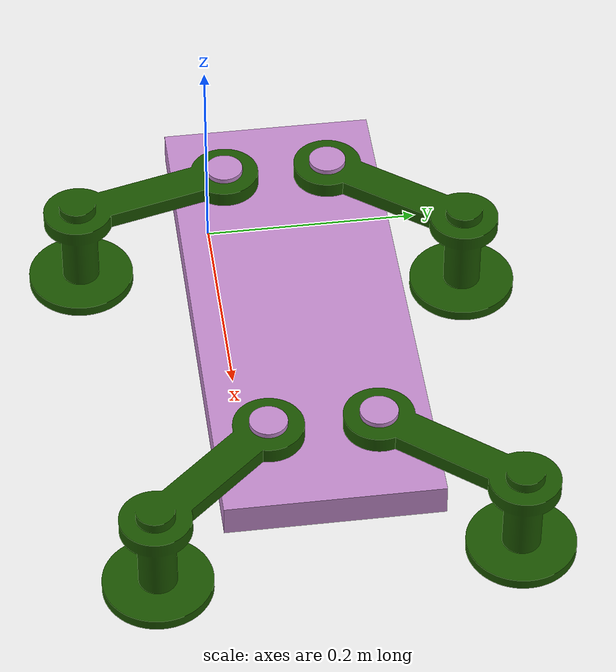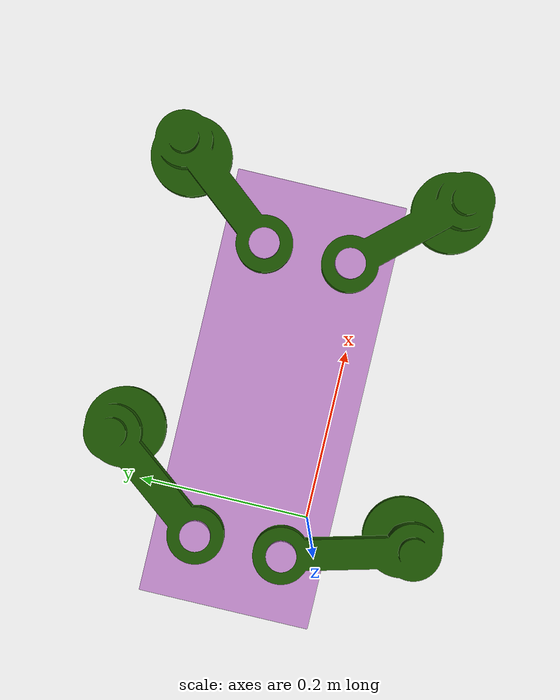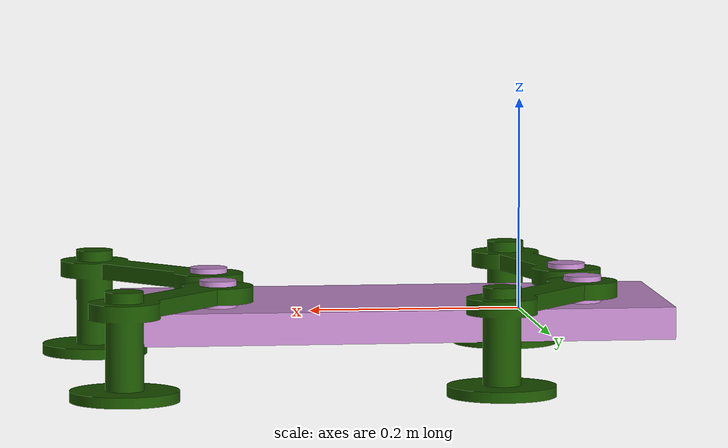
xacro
<?xml version="1.0" ?>
<!-- Generated using onshape-to-robot -->
<!-- Onshape https://cad.onshape.com/documents/cb0e539256f574f2d490db78/w/91c431183e6e22a7b620fa0c/e/314ada7fe03ae790e1f4065a -->
<robot name="gecko_robot" xmlns:xacro="http://www.ros.org/wiki/xacro">

<xacro:include filename="/home/cristianooo/jazzy_ros2_robostack/src/gecko_robot/model/diff_drive_robot.gazebo" />

  <link name="dummy_root">
    <inertial>
        <origin xyz="0.127962 0.0712341 0.00623375" rpy="0 0 0"/>
        <mass value="3.87026"/>
        <inertia ixx="0.0131855" ixy="0" ixz="0" iyy="0.0819855" iyz="0" izz="0.0944197"/>
    </inertial>
  </link>

  <joint name="dummy_joint" type="fixed">
      <parent link="dummy_root"/>
      <child link="base_link"/>
      <origin xyz="0 0 0" rpy="0 0 0"/>
  </joint>

  <!-- Link base_link -->
  <link name="base_link">
    <inertial>
      <origin xyz="0.127962 0.0712341 0.00623375" rpy="0 0 0"/>
      <mass value="3.87026"/>
      <inertia ixx="0.0131855" ixy="0" ixz="0" iyy="0.0819855" iyz="0" izz="0.0944197"/>
    </inertial>
    <!-- Part base_link -->
    <visual>
      <origin xyz="0.127962 0.0712341 -0.00962078" rpy="0 -0 0"/>
      <geometry>
        <mesh filename="package://gecko_robot/meshes/base_link.stl"/>
      </geometry>
      <material name="base_link_material">
        <color rgba="0.764706 0.545098 0.803922 1"/>
      </material>
    </visual>
    <collision>
      <origin xyz="0.127962 0.0712341 -0.00962078" rpy="0 -0 0"/>
      <geometry>
        <mesh filename="package://gecko_robot/meshes/base_link.stl"/>
      </geometry>
    </collision>
  </link>
  <!-- Link leg -->
  <link name="leg">
    <inertial>
      <origin xyz="-6.39046e-18 0.118891 0.0300105" rpy="0 0 0"/>
      <mass value="0.352713"/>
      <inertia ixx="0.0015466" ixy="-3.84635e-20" ixz="2.13146e-20" iyy="0.000536313" iyz="-0.000329291" izz="0.00122196"/>
    </inertial>
    <!-- Part leg -->
    <visual>
      <origin xyz="0 -2.77556e-17 0.0075" rpy="3.14159 -6.16298e-33 -2.42375e-18"/>
      <geometry>
        <mesh filename="package://gecko_robot/meshes/leg.stl"/>
      </geometry>
      <material name="leg_material">
        <color rgba="0.105882 0.333333 0 1"/>
      </material>
    </visual>
    <collision>
      <origin xyz="0 -2.77556e-17 0.0075" rpy="3.14159 -6.16298e-33 -2.42375e-18"/>
      <geometry>
        <mesh filename="package://gecko_robot/meshes/leg.stl"/>
      </geometry>
    </collision>
  </link>
  <!-- Joint from base_link to leg -->
  <joint name="leg1_FR" type="revolute">
    <origin xyz="0.297962 0.0212341 0.0328792" rpy="3.14159 4.81114e-17 0.729701"/>
    <parent link="base_link"/>
    <child link="leg"/>
    <axis xyz="0 0 1"/>
    <limit effort="10" velocity="10" lower="-0.0556968" upper="1.5151"/>
  </joint>
  <!-- Link leg_2 -->
  <link name="leg_2">
    <inertial>
      <origin xyz="-6.05715e-17 0.118891 0.0300105" rpy="0 0 0"/>
      <mass value="0.352713"/>
      <inertia ixx="0.0015466" ixy="-7.43923e-20" ixz="1.76307e-20" iyy="0.000536313" iyz="-0.000329291" izz="0.00122196"/>
    </inertial>
    <!-- Part leg_2 -->
    <visual>
      <origin xyz="-5.55112e-17 -5.55112e-17 0.0075" rpy="-3.14159 1.32734e-33 -2.95341e-17"/>
      <geometry>
        <mesh filename="package://gecko_robot/meshes/leg.stl"/>
      </geometry>
      <material name="leg_2_material">
        <color rgba="0.105882 0.333333 0 1"/>
      </material>
    </visual>
    <collision>
      <origin xyz="-5.55112e-17 -5.55112e-17 0.0075" rpy="-3.14159 1.32734e-33 -2.95341e-17"/>
      <geometry>
        <mesh filename="package://gecko_robot/meshes/leg.stl"/>
      </geometry>
    </collision>
  </link>
  <!-- Joint from base_link to leg_2 -->
  <joint name="leg3_FL" type="revolute">
    <origin xyz="0.297962 0.121234 0.0328792" rpy="3.14159 7.89998e-18 2.456"/>
    <parent link="base_link"/>
    <child link="leg_2"/>
    <axis xyz="0 0 1"/>
    <limit effort="10" velocity="10" lower="-1.47099" upper="0.099805"/>
  </joint>
  <!-- Link leg_3 -->
  <link name="leg_3">
    <inertial>
      <origin xyz="5.02167e-20 0.118891 0.0300105" rpy="0 0 0"/>
      <mass value="0.352713"/>
      <inertia ixx="0.0015466" ixy="-6.77996e-20" ixz="3.47595e-21" iyy="0.000536313" iyz="-0.000329291" izz="0.00122196"/>
    </inertial>
    <!-- Part leg_3 -->
    <visual>
      <origin xyz="0 0 0.0075" rpy="3.14159 -7.70372e-34 -4.01774e-17"/>
      <geometry>
        <mesh filename="package://gecko_robot/meshes/leg.stl"/>
      </geometry>
      <material name="leg_3_material">
        <color rgba="0.105882 0.333333 0 1"/>
      </material>
    </visual>
    <collision>
      <origin xyz="0 0 0.0075" rpy="3.14159 -7.70372e-34 -4.01774e-17"/>
      <geometry>
        <mesh filename="package://gecko_robot/meshes/leg.stl"/>
      </geometry>
    </collision>
  </link>
  <!-- Joint from base_link to leg_3 -->
  <joint name="leg2_BR" type="revolute">
    <origin xyz="-0.0420382 0.0212341 0.0328792" rpy="3.14159 -4.00405e-18 0.257056"/>
    <parent link="base_link"/>
    <child link="leg_3"/>
    <axis xyz="0 0 1"/>
    <limit effort="10" velocity="10" lower="-0.528342" upper="1.04245"/>
  </joint>
  <!-- Link leg_4 -->
  <link name="leg_4">
    <inertial>
      <origin xyz="-2.65211e-17 0.118891 0.0300105" rpy="0 0 0"/>
      <mass value="0.352713"/>
      <inertia ixx="0.0015466" ixy="-5.98799e-20" ixz="3.86331e-20" iyy="0.000536313" iyz="-0.000329291" izz="0.00122196"/>
    </inertial>
    <!-- Part leg_4 -->
    <visual>
      <origin xyz="-1.38778e-17 -1.38778e-17 0.0075" rpy="3.14159 2.18953e-47 1.9666e-18"/>
      <geometry>
        <mesh filename="package://gecko_robot/meshes/leg.stl"/>
      </geometry>
      <material name="leg_4_material">
        <color rgba="0.105882 0.333333 0 1"/>
      </material>
    </visual>
    <collision>
      <origin xyz="-1.38778e-17 -1.38778e-17 0.0075" rpy="3.14159 2.18953e-47 1.9666e-18"/>
      <geometry>
        <mesh filename="package://gecko_robot/meshes/leg.stl"/>
      </geometry>
    </collision>
  </link>
  <!-- Joint from base_link to leg_4 -->
  <joint name="leg4_BL" type="revolute">
    <origin xyz="-0.0420382 0.121234 0.0328792" rpy="3.14159 1.83853e-31 2.4832"/>
    <parent link="base_link"/>
    <child link="leg_4"/>
    <axis xyz="0 0 1"/>
    <limit effort="10" velocity="10" lower="-1.44379" upper="0.127005"/>
  </joint>
</robot>
